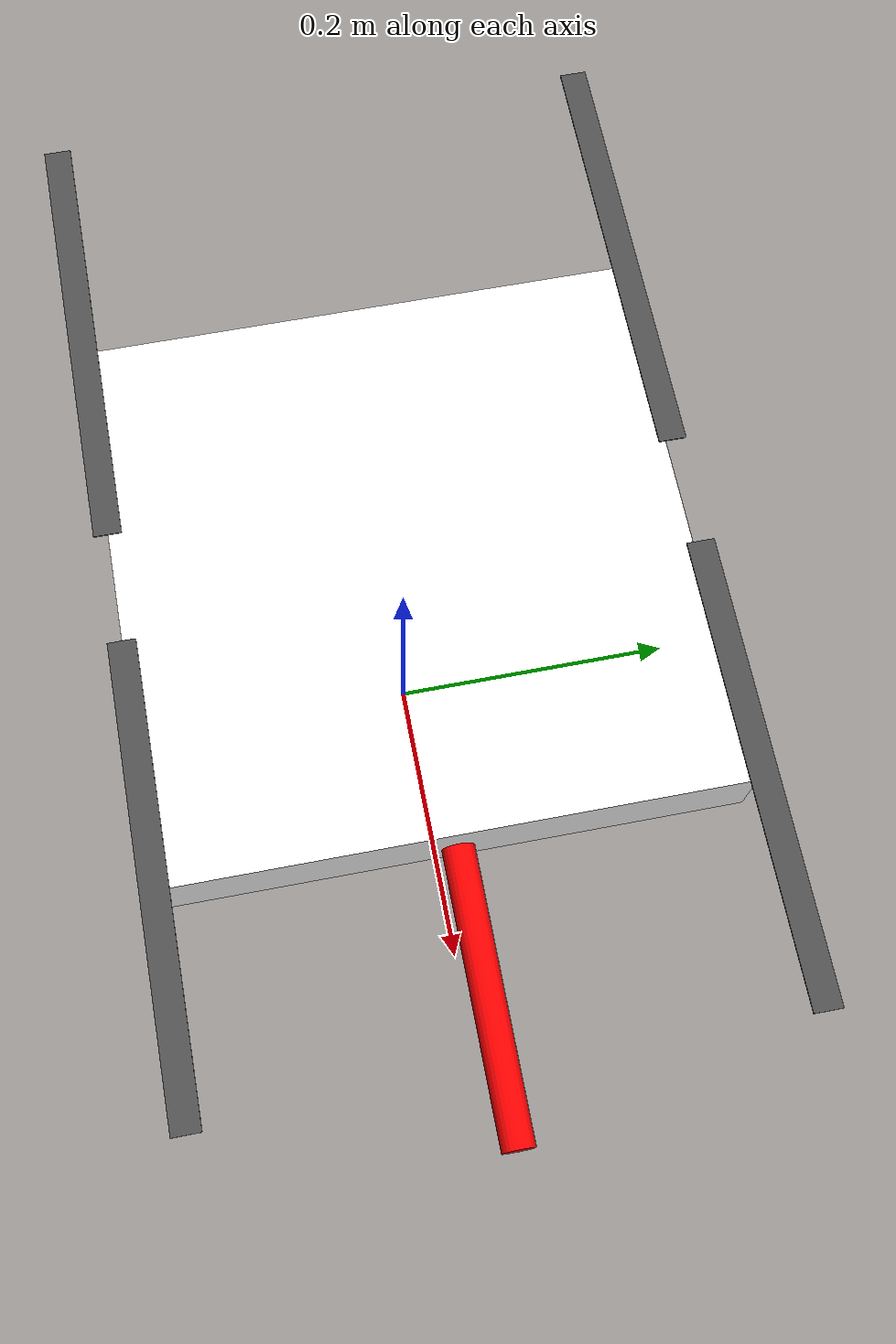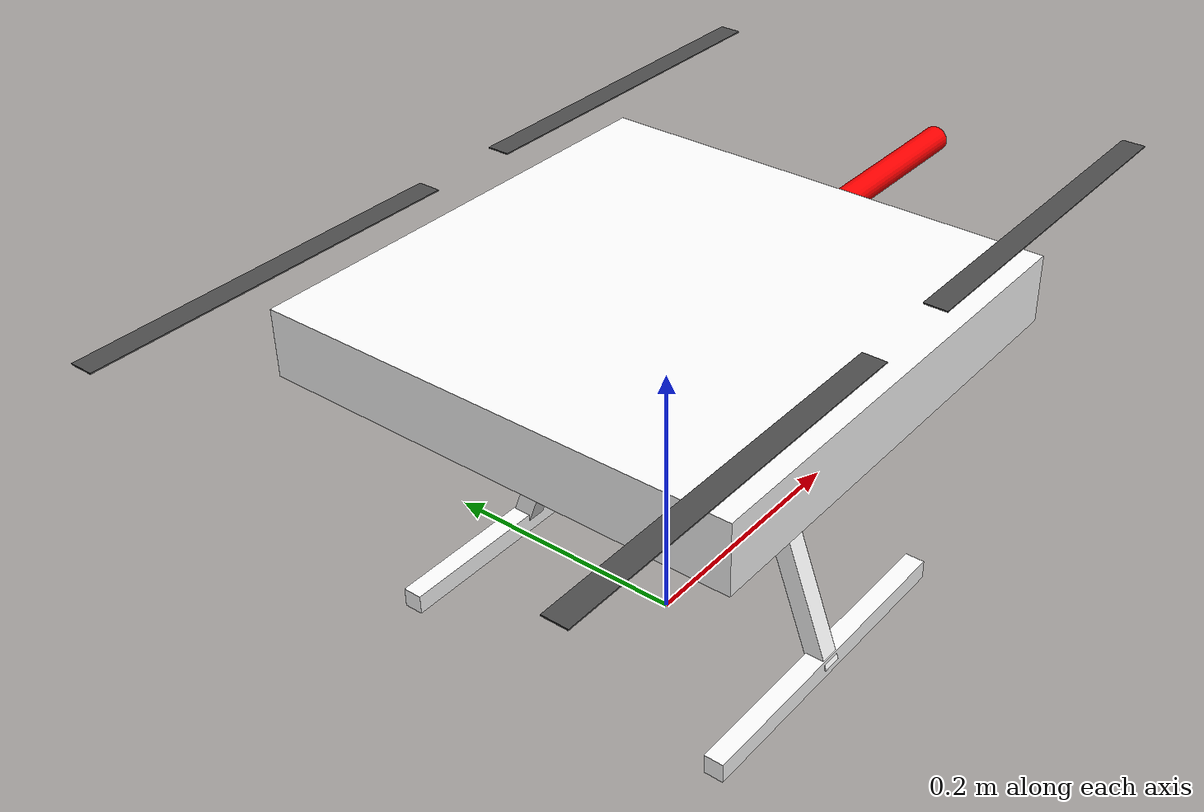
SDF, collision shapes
<?xml version="1.0" encoding="UTF-8"?>
<sdf version='1.9'>
  <model name='x500'>
    <pose>0 0 .24 0 0 0</pose>
    <self_collide>false</self_collide>
    <static>false</static>
    <link name="base_link">
      <inertial>
        <mass>2.0</mass>
        <inertia>
          <ixx>0.02166666666666667</ixx>
          <ixy>0</ixy>
          <ixz>0</ixz>
          <iyy>0.02166666666666667</iyy>
          <iyz>0</iyz>
          <izz>0.04000000000000001</izz>
        </inertia>
      </inertial>
      <gravity>true</gravity>
      <velocity_decay/>
      <visual name="base_link_visual">
        <pose>0 0 .025 0 0 3.141592654</pose>
        <geometry>
          <mesh>
            <scale>1 1 1</scale>
            <uri>model://x500/meshes/NXP-HGD-CF.dae</uri>
          </mesh>
        </geometry>
      </visual>
      <visual name="5010_motor_base_0">
        <pose>0.174 0.174 .032 0 0 -.45</pose>
        <geometry>
          <mesh>
            <scale>1 1 1</scale>
            <uri>model://x500/meshes/5010Base.dae</uri>
          </mesh>
        </geometry>
      </visual>
       <visual name="manipualtor_arm">
        <pose>0  0  0 0 0 0</pose>
        <geometry>
          <mesh>
            <scale>1 1 1</scale>
            <uri>model://x500/meshes/manipulator_arm.dae</uri>
          </mesh>
        </geometry>
      </visual>
       <visual name="upboard_assembly">
        <pose>0 0 -0.05grapout -3.14 0 -1.57 </pose>
        <geometry>
          <mesh>
            <scale>1 1 1</scale>
            <uri>model://x500/meshes/upboard_assembly.dae</uri>
          </mesh>
        </geometry>
      </visual>
      <visual name="5010_motor_base_1">
        <pose>-0.174 0.174 .032 0 0 -.45</pose>
        <geometry>
          <mesh>
            <scale>1 1 1</scale>
            <uri>model://x500/meshes/5010Base.dae</uri>
          </mesh>
        </geometry>
      </visual>
      <visual name="5010_motor_base_2">
        <pose>0.174 -0.174 .032 0 0 -.45</pose>
        <geometry>
          <mesh>
            <scale>1 1 1</scale>
            <uri>model://x500/meshes/5010Base.dae</uri>
          </mesh>
        </geometry>
      </visual>
      <visual name="5010_motor_base_3">
        <pose>-0.174 -0.174 .032 0 0 -.45</pose>
        <geometry>
          <mesh>
            <scale>1 1 1</scale>
            <uri>model://x500/meshes/5010Base.dae</uri>
          </mesh>
        </geometry>
      </visual>
      <visual name="NXP_FMUK66_FRONT">
        <pose>0.047 .001 .043 1 0 1.57</pose>
        <cast_shadows>false</cast_shadows>
        <geometry>
          <plane>
            <normal>0 0 1</normal>
            <size>.013 .007</size>
          </plane>
        </geometry>
        <material>
          <diffuse>1.0 1.0 1.0</diffuse>
          <specular>1.0 1.0 1.0</specular>
          <pbr>
            <metal>
              <albedo_map>model://x500/materials/textures/nxp.png</albedo_map>
            </metal>
          </pbr>
        </material>
      </visual>
      <visual name="NXP_FMUK66_TOP">
        <pose>-0.023 0 .0515 0 0 -1.57</pose>
        <cast_shadows>false</cast_shadows>
        <geometry>
          <plane>
            <normal>0 0 1</normal>
            <size>.013 .007</size>
          </plane>
        </geometry>
        <material>
          <diffuse>1.0 1.0 1.0</diffuse>
          <specular>1.0 1.0 1.0</specular>
          <pbr>
            <metal>
              <albedo_map>model://x500/materials/textures/nxp.png</albedo_map>
            </metal>
          </pbr>
        </material>
      </visual>
      <visual name="RDDRONE_FMUK66_TOP">
        <pose>-.03 0 .0515 0 0 -1.57</pose>
        <cast_shadows>false</cast_shadows>
        <geometry>
          <plane>
            <normal>0 0 1</normal>
            <size>.032 .0034</size>
          </plane>
        </geometry>
        <material>
          <diffuse>1.0 1.0 1.0</diffuse>
          <specular>1.0 1.0 1.0</specular>
          <pbr>
            <metal>
              <albedo_map>model://x500/materials/textures/rd.png</albedo_map>
            </metal>
          </pbr>
        </material>
      </visual>
      <collision name="base_link_collision_0">
        <pose>0 0 .007 0 0 0</pose>
        <geometry>
          <box>
            <size>0.35355339059327373 0.35355339059327373 0.05</size>
          </box>
        </geometry>
        <surface>
          <contact>
            <ode>
              <min_depth>0.001</min_depth>
              <max_vel>0</max_vel>
            </ode>
          </contact>
          <friction>
            <ode/>
          </friction>
        </surface>
      </collision>
      <collision name="base_link_collision_1">
        <pose>0 -0.098 -.123 -0.35 0 0</pose>
        <geometry>
          <box>
            <size>0.015 0.015 0.21</size>
          </box>
        </geometry>
        <surface>
          <contact>
            <ode>
              <min_depth>0.001</min_depth>
              <max_vel>0</max_vel>
            </ode>
          </contact>
          <friction>
            <ode/>
          </friction>
        </surface>
      </collision>
      <collision name="base_link_collision_2">
        <pose>0 0.098 -.123 0.35 0 0</pose>
        <geometry>
          <box>
            <size>0.015 0.015 0.21</size>
          </box>
        </geometry>
        <surface>
          <contact>
            <ode>
              <min_depth>0.001</min_depth>
              <max_vel>0</max_vel>
            </ode>
          </contact>
          <friction>
            <ode/>
          </friction>
        </surface>
      </collision>
      <collision name="base_link_collision_3">
        <pose>0 -0.132 -.2195 0 0 0</pose>
        <geometry>
          <box>
            <size>0.25 0.015 0.015</size>
          </box>
        </geometry>
        <surface>
          <contact>
            <ode>
              <min_depth>0.001</min_depth>
              <max_vel>0</max_vel>
            </ode>
          </contact>
          <friction>
            <ode/>
          </friction>
        </surface>
      </collision>
      <collision name="base_link_collision_4">
        <pose>0 0.132 -.2195 0 0 0</pose>
        <geometry>
          <box>
            <size>0.25 0.015 0.015</size>
          </box>
        </geometry>
        <surface>
          <contact>
            <ode>
              <min_depth>0.001</min_depth>
              <max_vel>0</max_vel>
            </ode>
          </contact>
          <friction>
            <ode/>
          </friction>
        </surface>
      </collision>
      <sensor name="air_pressure_sensor" type="air_pressure">
        <always_on>1</always_on>
        <update_rate>50</update_rate>
        <air_pressure>
          <pressure>
            <noise type="gaussian">
              <mean>0</mean>
              <stddev>0.01</stddev>
            </noise>
          </pressure>
        </air_pressure>
      </sensor>
      <sensor name="imu_sensor" type="imu">
        <always_on>1</always_on>
        <update_rate>250</update_rate>
      </sensor>
    </link>
    <link name="rotor_0">
      <gravity>true</gravity>
      <self_collide>false</self_collide>
      <velocity_decay/>
      <pose>0.174 -0.174 0.06 0 0 0</pose>
      <inertial>
          <mass>0.016076923076923075</mass>
          <inertia>
            <ixx>3.8464910483993325e-07</ixx>
            <iyy>2.6115851691700804e-05</iyy>
            <izz>2.649858234714004e-05</izz>
          </inertia>
        </inertial>
      <visual name="rotor_0_visual">
        <pose>-0.022 -0.14638461538461536 -0.016 0 0 0</pose>
        <geometry>
          <mesh>
            <scale>0.8461538461538461 0.8461538461538461 0.8461538461538461</scale>
            <uri>model://x500/meshes/1345_prop_ccw.stl</uri>
          </mesh>
        </geometry>
        <material>
          <script>
            <name>Gazebo/DarkGrey</name>
            <uri>file://media/materials/scripts/gazebo.material</uri>
          </script>
        </material>
      </visual>
      <visual name="rotor_0_visual_motor_bell">
        <pose>0 0 -.032 0 0 0</pose>
        <geometry>
          <mesh>
            <scale>1 1 1</scale>
            <uri>model://x500/meshes/5010Bell.dae</uri>
          </mesh>
        </geometry>
      </visual>
      <collision name="rotor_0_collision">
        <pose>0 0 0 0 0 0 </pose>
        <geometry>
          <box>
            <size>0.2792307692307692 0.016923076923076923 0.0008461538461538462</size>
          </box>
        </geometry>
        <surface>
          <contact>
            <ode>
              <min_depth>0.001</min_depth>
              <max_vel>0</max_vel>
            </ode>
          </contact>
          <friction>
            <ode/>
          </friction>
        </surface>
      </collision>
    </link>
    <joint name="rotor_0_joint" type="revolute">
      <parent>base_link</parent>
      <child>rotor_0</child>
      <axis>
        <xyz>0 0 1</xyz>
        <limit>
          <lower>-1e+16</lower>
          <upper>1e+16</upper>
        </limit>
        <dynamics>
          <spring_reference>0</spring_reference>
          <spring_stiffness>0</spring_stiffness>
        </dynamics>
      </axis>
    </joint>
    <link name="rotor_1">
      <gravity>true</gravity>
      <self_collide>false</self_collide>
      <velocity_decay/>
      <pose>-0.174 0.174 0.06 0 0 0</pose>
      <inertial>
          <mass>0.016076923076923075</mass>
          <inertia>
            <ixx>3.8464910483993325e-07</ixx>
            <iyy>2.6115851691700804e-05</iyy>
            <izz>2.649858234714004e-05</izz>
          </inertia>
        </inertial>
      <visual name="rotor_1_visual">
        <pose>-0.022 -0.14638461538461536 -0.016 0 0 0</pose>
        <geometry>
          <mesh>
            <scale>0.8461538461538461 0.8461538461538461 0.8461538461538461</scale>
            <uri>model://x500/meshes/1345_prop_ccw.stl</uri>
          </mesh>
        </geometry>
        <material>
          <script>
            <name>Gazebo/DarkGrey</name>
            <uri>file://media/materials/scripts/gazebo.material</uri>
          </script>
        </material>
      </visual>
      <visual name="rotor_1_visual_motor_top">
        <pose>0 0 -.032 0 0 0</pose>
        <geometry>
          <mesh>
            <scale>1 1 1</scale>
            <uri>model://x500/meshes/5010Bell.dae</uri>
          </mesh>
        </geometry>
      </visual>
      <collision name="rotor_1_collision">
        <pose>0 0 0 0 0 0 </pose>
        <geometry>
          <box>
            <size>0.2792307692307692 0.016923076923076923 0.0008461538461538462</size>
          </box>
        </geometry>
        <surface>
          <contact>
            <ode>
              <min_depth>0.001</min_depth>
              <max_vel>0</max_vel>
            </ode>
          </contact>
          <friction>
            <ode/>
          </friction>
        </surface>
      </collision>
    </link>
    <joint name="rotor_1_joint" type="revolute">
      <parent>base_link</parent>
      <child>rotor_1</child>
      <axis>
        <xyz>0 0 1</xyz>
        <limit>
          <lower>-1e+16</lower>
          <upper>1e+16</upper>
        </limit>
        <dynamics>
          <spring_reference>0</spring_reference>
          <spring_stiffness>0</spring_stiffness>
        </dynamics>
      </axis>
    </joint>
    <link name="rotor_2">
      <gravity>true</gravity>
      <self_collide>false</self_collide>
      <velocity_decay/>
      <pose>0.174 0.174 0.06 0 0 0</pose>
      <inertial>
          <mass>0.016076923076923075</mass>
          <inertia>
            <ixx>3.8464910483993325e-07</ixx>
            <iyy>2.6115851691700804e-05</iyy>
            <izz>2.649858234714004e-05</izz>
          </inertia>
        </inertial>
      <visual name="rotor_2_visual">
        <pose>-0.022 -0.14638461538461536 -0.016 0 0 0</pose>
        <geometry>
          <mesh>
            <scale>0.8461538461538461 0.8461538461538461 0.8461538461538461</scale>
            <uri>model://x500/meshes/1345_prop_cw.stl</uri>
          </mesh>
        </geometry>
        <material>
          <script>
            <name>Gazebo/DarkGrey</name>
            <uri>file://media/materials/scripts/gazebo.material</uri>
          </script>
        </material>
      </visual>
      <visual name="rotor_2_visual_motor_top">
        <pose>0 0 -.032 0 0 0</pose>
        <geometry>
          <mesh>
            <scale>1 1 1</scale>
            <uri>model://x500/meshes/5010Bell.dae</uri>
          </mesh>
        </geometry>
      </visual>
      <collision name="rotor_2_collision">
        <pose>0 0 0 0 0 0 </pose>
        <geometry>
          <box>
            <size>0.2792307692307692 0.016923076923076923 0.0008461538461538462</size>
          </box>
        </geometry>
        <surface>
          <contact>
            <ode>
              <min_depth>0.001</min_depth>
              <max_vel>0</max_vel>
            </ode>
          </contact>
          <friction>
            <ode/>
          </friction>
        </surface>
      </collision>
    </link>
    <joint name="rotor_2_joint" type="revolute">
      <parent>base_link</parent>
      <child>rotor_2</child>
      <axis>
        <xyz>0 0 1</xyz>
        <limit>
          <lower>-1e+16</lower>
          <upper>1e+16</upper>
        </limit>
        <dynamics>
          <spring_reference>0</spring_reference>
          <spring_stiffness>0</spring_stiffness>
        </dynamics>
      </axis>
    </joint>
    <link name="rotor_3">
      <gravity>true</gravity>
      <self_collide>false</self_collide>
      <velocity_decay/>
      <pose>-0.174 -0.174 0.06 0 0 0</pose>
      <inertial>
          <mass>0.016076923076923075</mass>
          <inertia>
            <ixx>3.8464910483993325e-07</ixx>
            <iyy>2.6115851691700804e-05</iyy>
            <izz>2.649858234714004e-05</izz>
          </inertia>
        </inertial>
      <visual name="rotor_3_visual">
        <pose>-0.022 -0.14638461538461536 -0.016 0 0 0</pose>
        <geometry>
          <mesh>
            <scale>0.8461538461538461 0.8461538461538461 0.8461538461538461</scale>
            <uri>model://x500/meshes/1345_prop_cw.stl</uri>
          </mesh>
        </geometry>
        <material>
          <script>
            <name>Gazebo/DarkGrey</name>
            <uri>file://media/materials/scripts/gazebo.material</uri>
          </script>
        </material>
      </visual>
      <visual name="rotor_3_visual_motor_top">
        <pose>0 0 -.032 0 0 0</pose>
        <geometry>
          <mesh>
            <scale>1 1 1</scale>
            <uri>model://x500/meshes/5010Bell.dae</uri>
          </mesh>
        </geometry>
      </visual>
      <collision name="rotor_3_collision">
        <pose>0 0 0 0 0 0 </pose>
        <geometry>
          <box>
            <size>0.2792307692307692 0.016923076923076923 0.0008461538461538462</size>
          </box>
        </geometry>
        <surface>
          <contact>
            <ode>
              <min_depth>0.001</min_depth>
              <max_vel>0</max_vel>
            </ode>
          </contact>
          <friction>
            <ode/>
          </friction>
        </surface>
      </collision>
    </link>
    <joint name="rotor_3_joint" type="revolute">
      <parent>base_link</parent>
      <child>rotor_3</child>
      <axis>
        <xyz>0 0 1</xyz>
        <limit>
          <lower>-1e+16</lower>
          <upper>1e+16</upper>
        </limit>
        <dynamics>
          <spring_reference>0</spring_reference>
          <spring_stiffness>0</spring_stiffness>
        </dynamics>
      </axis>
    </joint>

    <link name='front_arm'>
        <pose>0.2 0 0 0 -1.5707 0</pose> <!--angles are in radian-->
        <inertial>
        <mass>0.1</mass>
        <inertia>
          <ixx>0.000166667</ixx>
          <ixy>0</ixy>
          <ixz>0</ixz>
          <iyy>0.000166667</iyy>
          <iyz>0</iyz>
          <izz>0.000166667</izz>
        </inertia>
      </inertial>
      <visual name='visual'>
        <pose>0 0 0 0 0 0</pose> <!--angles are in radian-->
        <geometry>
          <cylinder>
            <radius>0.01</radius>
            <length>0.3</length>
          </cylinder>
        </geometry>
        <material>
          <ambient>1.0 0.0 0.0 1</ambient>
          <diffuse>1.0 0.0 0.0 1</diffuse>
          <specular>1.0 0.0 0.0 1</specular>
        </material>
      </visual>
      <collision name='collision'>
        <density>6.3</density>
        <geometry>
          <cylinder>
            <radius>0.01</radius>
            <length>0.3</length>
          </cylinder>
        </geometry>
      </collision>
    </link>

      <!--connecting these links together using joints-->
     <!--connecting these links together using joints-->
    <joint name='front_arm_joint' type='revolute'> <!--continous joint is not supported yet-->
        <pose relative_to='front_arm'/>
        <parent>base_link</parent>
        <child>front_arm</child>
        <axis>
            <xyz expressed_in='__model__'>1 0 0</xyz> <!--can be descired to any frame or even arbitrary frames-->
            <limit>
                <lower>0</lower>    <!--negative infinity-->
                <upper>0</upper>     <!--positive infinity-->
            </limit>
        </axis>
        <sensor name= 'forcetorque' type='force_torque'>
            <always_on>true</always_on>
            <update_rate>100.0</update_rate>
            <visualize>true</visualize>
            <force_torque>
                <frame>sensor</frame>
                <measure_direction>child_to_parent</measure_direction>
            </force_torque>
            <topic>wrench</topic>
        </sensor>
    </joint>

   <plugin filename="gz-sim-multicopter-motor-model-system" name="gz::sim::systems::MulticopterMotorModel">
      <jointName>rotor_0_joint</jointName>
      <linkName>rotor_0</linkName>
      <turningDirection>ccw</turningDirection>
      <timeConstantUp>0.0125</timeConstantUp>
      <timeConstantDown>0.025</timeConstantDown>
      <maxRotVelocity>1000.0</maxRotVelocity>
      <motorConstant>8.54858e-06</motorConstant>
      <momentConstant>0.016</momentConstant>
      <commandSubTopic>command/motor_speed</commandSubTopic>
      <motorNumber>0</motorNumber>
      <rotorDragCoefficient>8.06428e-05</rotorDragCoefficient>
      <rollingMomentCoefficient>1e-06</rollingMomentCoefficient>
      <rotorVelocitySlowdownSim>10</rotorVelocitySlowdownSim>
      <motorType>velocity</motorType>
    </plugin>
    <plugin filename="gz-sim-multicopter-motor-model-system" name="gz::sim::systems::MulticopterMotorModel">
      <jointName>rotor_1_joint</jointName>
      <linkName>rotor_1</linkName>
      <turningDirection>ccw</turningDirection>
      <timeConstantUp>0.0125</timeConstantUp>
      <timeConstantDown>0.025</timeConstantDown>
      <maxRotVelocity>1000.0</maxRotVelocity>
      <motorConstant>8.54858e-06</motorConstant>
      <momentConstant>0.016</momentConstant>
      <commandSubTopic>command/motor_speed</commandSubTopic>
      <motorNumber>1</motorNumber>
      <rotorDragCoefficient>8.06428e-05</rotorDragCoefficient>
      <rollingMomentCoefficient>1e-06</rollingMomentCoefficient>
      <rotorVelocitySlowdownSim>10</rotorVelocitySlowdownSim>
      <motorType>velocity</motorType>
    </plugin>
    <plugin filename="gz-sim-multicopter-motor-model-system" name="gz::sim::systems::MulticopterMotorModel">
      <jointName>rotor_2_joint</jointName>
      <linkName>rotor_2</linkName>
      <turningDirection>cw</turningDirection>
      <timeConstantUp>0.0125</timeConstantUp>
      <timeConstantDown>0.025</timeConstantDown>
      <maxRotVelocity>1000.0</maxRotVelocity>
      <motorConstant>8.54858e-06</motorConstant>
      <momentConstant>0.016</momentConstant>
      <commandSubTopic>command/motor_speed</commandSubTopic>
      <motorNumber>2</motorNumber>
      <rotorDragCoefficient>8.06428e-05</rotorDragCoefficient>
      <rollingMomentCoefficient>1e-06</rollingMomentCoefficient>
      <rotorVelocitySlowdownSim>10</rotorVelocitySlowdownSim>
      <motorType>velocity</motorType>
    </plugin>
    <plugin filename="gz-sim-multicopter-motor-model-system" name="gz::sim::systems::MulticopterMotorModel">
      <jointName>rotor_3_joint</jointName>
      <linkName>rotor_3</linkName>
      <turningDirection>cw</turningDirection>
      <timeConstantUp>0.0125</timeConstantUp>
      <timeConstantDown>0.025</timeConstantDown>
      <maxRotVelocity>1000.0</maxRotVelocity>
      <motorConstant>8.54858e-06</motorConstant>
      <momentConstant>0.016</momentConstant>
      <commandSubTopic>command/motor_speed</commandSubTopic>
      <motorNumber>3</motorNumber>
      <rotorDragCoefficient>8.06428e-05</rotorDragCoefficient>
      <rollingMomentCoefficient>1e-06</rollingMomentCoefficient>
      <rotorVelocitySlowdownSim>10</rotorVelocitySlowdownSim>
      <motorType>velocity</motorType>
    </plugin>
  </model>
</sdf>
